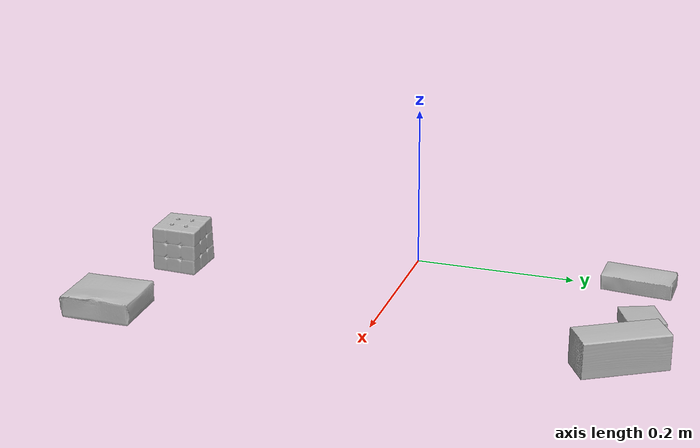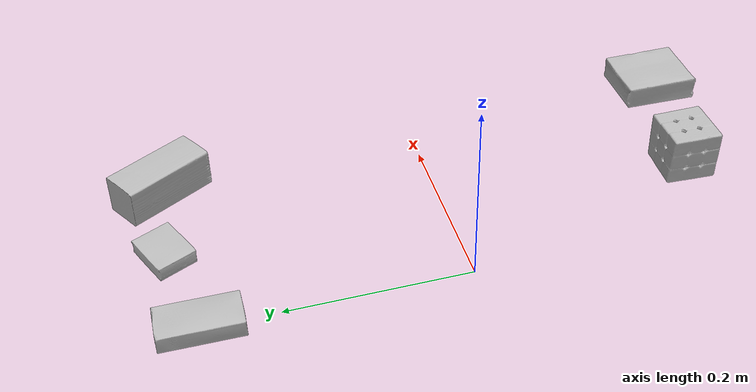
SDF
<?xml version="1.0" ?>
<sdf version="1.4">
  <world name="default">
    <light name="light1" type="point">
      <pose>0 0 1 0 0 0</pose>
      <diffuse>3 3 3 1</diffuse>
      <specular>3 3 3 1</specular>
    </light>
    <light name="light2" type="point">
      <pose>0 0.5 2 0 0 0</pose>
      <diffuse>1 1 1 1</diffuse>
      <specular>1 1 1 1</specular>
    </light>
    <light name="light3" type="point">
      <pose>0 0.5 2 0 0 0</pose>
      <diffuse>3 3 3 1</diffuse>
      <specular>3 3 3 1</specular>
    </light>
    <scene>
      <ambient>0.7 0.7 0.7</ambient>
    </scene>
    <model name="box1">
      <link name="link_box1">
        <collision name="default">
          <geometry>
            <mesh>
              <uri>model://gelatin_box/collision_meshes/collision.obj</uri>
              <scale>1.0 1.0 1.0</scale>
            </mesh>
          </geometry>
          <surface>
            <friction>
              <ode>
                <mu>0.5</mu>
                <mu2>0.5</mu2>
              </ode>
            </friction>
          </surface>
        </collision>
        <visual name="default">
          <geometry>
            <mesh>
              <uri>model://gelatin_box/visual_meshes/visual.dae</uri>
              <scale>1.0 1.0 1.0</scale>
            </mesh>
          </geometry>
        </visual>
        <inertial>
          <mass>0.15228882431983948</mass>
          <pose>0.0004319618456065655 0.00011156871914863586 -0.0003640321083366871 -0.00105037218966889 -0.004755816826754503 0.0164405576082189</pose>
          <inertia>
            <ixx>0.00010750349</ixx>
            <iyy>7.678918e-05</iyy>
            <izz>0.00016364428</izz>
            <ixy>0</ixy>
            <ixz>0</ixz>
            <iyz>0</iyz>
          </inertia>
        </inertial>
      </link>
      <pose>0.24995121359825134 -0.3100716769695282 0.01516831386834383 0.005597490515993919 -0.007304585443790318 7.296697746607458e-06</pose>
    </model>
    <model name="box2">
      <link name="link_box2">
        <collision name="default">
          <geometry>
            <mesh>
              <uri>model://rubiks_cube/collision_meshes/collision.obj</uri>
              <scale>1.0 1.0 1.0</scale>
            </mesh>
          </geometry>
          <surface>
            <friction>
              <ode>
                <mu>0.5</mu>
                <mu2>0.5</mu2>
              </ode>
            </friction>
          </surface>
        </collision>
        <visual name="default">
          <geometry>
            <mesh>
              <uri>model://rubiks_cube/visual_meshes/visual.dae</uri>
              <scale>1.0 1.0 1.0</scale>
            </mesh>
          </geometry>
        </visual>
        <inertial>
          <mass>0.18699690699577332</mass>
          <pose>2.6721041649580002e-05 5.2569666877388954e-05 -7.264316082000732e-06 -0.054672785544912415 -0.09814058570479768 -0.03445363054661819</pose>
          <inertia>
            <ixx>0.00010332834</ixx>
            <iyy>0.00010284647</iyy>
            <izz>0.000104184575</izz>
            <ixy>0</ixy>
            <ixz>0</ixz>
            <iyz>0</iyz>
          </inertia>
        </inertial>
      </link>
      <pose>0.0999315083026886 -0.2802274525165558 0.028679007664322853 -3.3527607732601315e-08 1.2340025242092442e-08 1.5506518998140315e-07</pose>
    </model>
    <model name="box3">
      <link name="link_box3">
        <collision name="default">
          <geometry>
            <mesh>
              <uri>model://pudding_box/collision_meshes/collision.obj</uri>
              <scale>0.5 0.5 0.5</scale>
            </mesh>
          </geometry>
          <surface>
            <friction>
              <ode>
                <mu>0.5</mu>
                <mu2>0.5</mu2>
              </ode>
            </friction>
          </surface>
        </collision>
        <visual name="default">
          <geometry>
            <mesh>
              <uri>model://pudding_box/visual_meshes/visual.dae</uri>
              <scale>0.5 0.5 0.5</scale>
            </mesh>
          </geometry>
        </visual>
        <inertial>
          <mass>0.04129739850759506</mass>
          <pose>0.00024474109522998333 0.00040339428232982755 -0.0002594413817860186 0.005213100432551209 -0.006603796827212886 0.020079819580048088</pose>
          <inertia>
            <ixx>1.1671145e-05</ixx>
            <iyy>7.852431e-06</iyy>
            <izz>1.7235501e-05</izz>
            <ixy>0</ixy>
            <ixz>0</ixz>
            <iyz>0</iyz>
          </inertia>
        </inertial>
      </link>
      <pose>0.10966479778289795 0.300134539604187 0.00986290443688631 0.02234864262552033 -0.011391655532493047 -1.1543064818399573</pose>
    </model>
    <model name="box4">
      <link name="link_box4">
        <collision name="default">
          <geometry>
            <mesh>
              <uri>model://sugar_box/collision_meshes/collision.obj</uri>
              <scale>0.5 0.5 0.5</scale>
            </mesh>
          </geometry>
          <surface>
            <friction>
              <ode>
                <mu>0.5</mu>
                <mu2>0.5</mu2>
              </ode>
            </friction>
          </surface>
        </collision>
        <visual name="default">
          <geometry>
            <mesh>
              <uri>model://sugar_box/visual_meshes/visual.dae</uri>
              <scale>0.5 0.5 0.5</scale>
            </mesh>
          </geometry>
        </visual>
        <inertial>
          <mass>0.09136254340410233</mass>
          <pose>0.0005171863595023751 1.924554817378521e-05 -0.00018182402709499002 -0.00040462606744182556 0.0010506635219056535 0.0026153790218759383</pose>
          <inertia>
            <ixx>1.9030753e-05</ixx>
            <iyy>6.15113e-05</iyy>
            <izz>7.363638e-05</izz>
            <ixy>0</ixy>
            <ixz>0</ixz>
            <iyz>0</iyz>
          </inertia>
        </inertial>
      </link>
      <pose>-9.653451706981286e-05 0.28051427006721497 0.011399307288229465 0.0007749375969182604 -0.023433220625915168 -1.6061984833983456</pose>
    </model>
    <model name="box5">
      <link name="link_box5">
        <collision name="default">
          <geometry>
            <mesh>
              <uri>model://wood_block/collision_meshes/collision.obj</uri>
              <scale>0.5 0.5 0.5</scale>
            </mesh>
          </geometry>
          <surface>
            <friction>
              <ode>
                <mu>0.5</mu>
                <mu2>0.5</mu2>
              </ode>
            </friction>
          </surface>
        </collision>
        <visual name="default">
          <geometry>
            <mesh>
              <uri>model://wood_block/visual_meshes/visual.dae</uri>
              <scale>0.5 0.5 0.5</scale>
            </mesh>
          </geometry>
        </visual>
        <inertial>
          <mass>0.2591090798377991</mass>
          <pose>-2.9066577553749084e-06 -0.00028540470520965755 0.00013204290007706732 -0.05220937491622274 -0.005192696068464721 -0.006861378365732138</pose>
          <inertia>
            <ixx>8.6681786e-05</ixx>
            <iyy>0.00027382775</iyy>
            <izz>0.0002728035</izz>
            <ixy>0</ixy>
            <ixz>0</ixz>
            <iyz>0</iyz>
          </inertia>
        </inertial>
      </link>
      <pose>0.21044662594795227 0.2904195189476013 0.022629262879490852 -0.005208368718872786 0.0057186987282987324 -1.045519168544966</pose>
    </model>
  </world>
</sdf>
